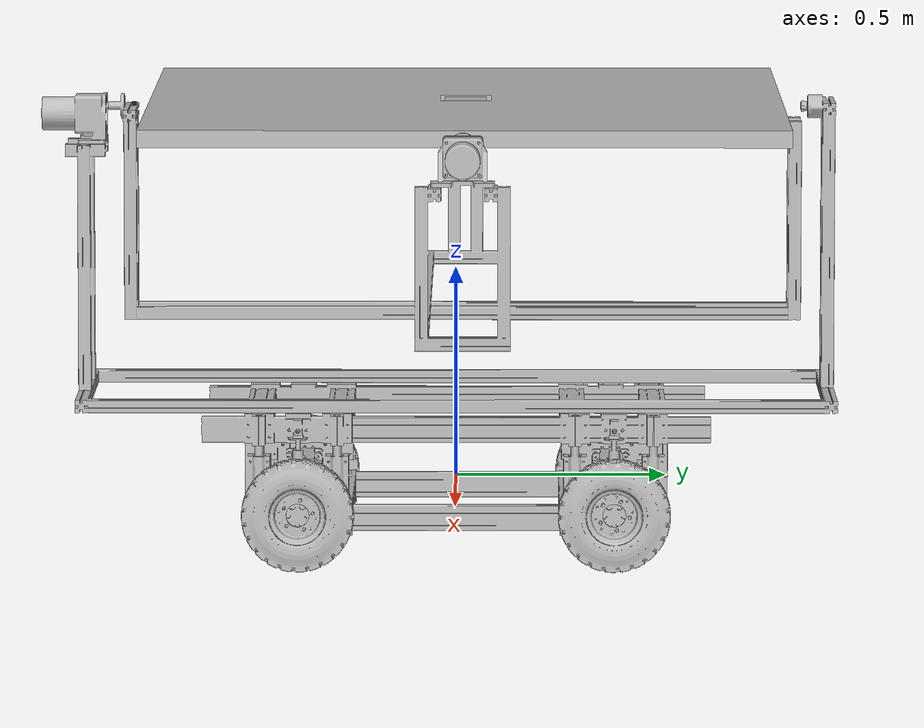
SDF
<sdf version='1.6'>
  <model name='Mobile_Leveling_Platform_V2'>
    <link name='base_link'>
      <pose frame=''>0 0 0 0 -0 0</pose>
      <inertial>
        <pose frame=''>4e-06 0.005832 0.153015 0 -0 0</pose>
        <mass>35.5236</mass>
        <inertia>
          <ixx>12.5602</ixx>
          <ixy>5.35833e-06</ixy>
          <ixz>-1.17498e-06</ixz>
          <iyy>5.74336</iyy>
          <iyz>-0.0289936</iyz>
          <izz>12.8391</izz>
        </inertia>
      </inertial>
      <collision name='base_link_collision'>
        <pose frame=''>0 0 0 0 -0 0</pose>
        <geometry>
          <box>
            <size>0.64 0.998 0.222</size>
          </box>
        </geometry>
      </collision>
      <collision name='base_link_fixed_joint_lump__imu_link_base_collision_1'>
        <pose frame=''>0 0 0.111 0 -0 0</pose>
        <geometry>
          <box>
            <size>0.01 0.01 0.01</size>
          </box>
        </geometry>
      </collision>
      <collision name='base_link_fixed_joint_lump__mating_link_collision_2'>
        <pose frame=''>1e-05 -0.02989 0.160848 0 -0 0</pose>
        <geometry>
          <box>
            <size>0.64 1.81 0.1</size>
          </box>
        </geometry>
      </collision>
      <collision name='base_link_fixed_joint_lump__front_leveling_link_collision_3'>
        <pose frame=''>-0.006 -0.91289 0.57249 0 -0 0</pose>
        <geometry>
          <box>
            <size>0.218 0.153 0.697</size>
          </box>
        </geometry>
      </collision>
      <collision name='base_link_fixed_joint_lump__rear_Leveling_link_collision_4'>
        <pose frame=''>0 0.882161 0.57749 0 -0 0</pose>
        <geometry>
          <box>
            <size>0.1535 0.08 0.697</size>
          </box>
        </geometry>
      </collision>
      <visual name='base_link_visual'>
        <pose frame=''>0 1.5 0 0 -0 0</pose>
        <geometry>
          <mesh>
            <scale>1 1 1</scale>
            <uri>model://Mobile_Leveling_Platform_V2/meshes/base_link.STL</uri>
          </mesh>
        </geometry>
      </visual>
      <visual name='base_link_fixed_joint_lump__imu_link_base_visual_1'>
        <pose frame=''>0 0 0.111 0 -0 0</pose>
        <geometry>
          <box>
            <size>0.01 0.01 0.01</size>
          </box>
        </geometry>
      </visual>
      <visual name='base_link_fixed_joint_lump__mating_link_visual_2'>
        <pose frame=''>-0.28 0.88511 0.20249 0 -0 0</pose>
        <geometry>
          <mesh>
            <scale>1 1 1</scale>
            <uri>model://Mobile_Leveling_Platform_V2/meshes/mating_link.STL</uri>
          </mesh>
        </geometry>
      </visual>
      <visual name='base_link_fixed_joint_lump__front_leveling_link_visual_3'>
        <pose frame=''>0.094 -0.88289 0.21749 0 -0 0</pose>
        <geometry>
          <mesh>
            <scale>1 1 1</scale>
            <uri>model://Mobile_Leveling_Platform_V2/meshes/front_leveling_link.STL</uri>
          </mesh>
        </geometry>
      </visual>
      <visual name='base_link_fixed_joint_lump__rear_Leveling_link_visual_4'>
        <pose frame=''>-0.03175 0.88511 0.21749 0 -0 0</pose>
        <geometry>
          <mesh>
            <scale>1 1 1</scale>
            <uri>model://Mobile_Leveling_Platform_V2/meshes/rear_Leveling_link.STL</uri>
          </mesh>
        </geometry>
      </visual>
    </link>
    <link name='front_L_motor_rev_link'>
      <pose frame=''>0.363 -0.3709 -0.041791 3.14159 -1.57079 3.14159</pose>
      <inertial>
        <pose frame=''>0 0 -0.010725 0 -0 0</pose>
        <mass>3.03082</mass>
        <inertia>
          <ixx>0.0156335</ixx>
          <ixy>-4.20874e-07</ixy>
          <ixz>-5.7378e-07</ixz>
          <iyy>0.0156294</iyy>
          <iyz>-1.7765e-07</iyz>
          <izz>0.0290559</izz>
        </inertia>
      </inertial>
      <collision name='front_L_motor_rev_link_collision'>
        <pose frame=''>0 0 0 0 -0 0</pose>
        <geometry>
          <mesh>
            <scale>1 1 1</scale>
            <uri>model://Mobile_Leveling_Platform_V2/meshes/front_L_motor_rev_link.STL</uri>
          </mesh>
        </geometry>
      </collision>
      <collision name='front_L_motor_rev_link_fixed_joint_lump__front_L_tire_link_collision_1'>
        <pose frame=''>0 0 -0.011 3.14159 1.57079 3.0095</pose>
        <geometry>
          <mesh>
            <scale>1 1 1</scale>
            <uri>model://Mobile_Leveling_Platform_V2/meshes/front_L_tire_link.STL</uri>
          </mesh>
        </geometry>
      </collision>
      <visual name='front_L_motor_rev_link_visual'>
        <pose frame=''>0 0 0 0 -0 0</pose>
        <geometry>
          <mesh>
            <scale>1 1 1</scale>
            <uri>model://Mobile_Leveling_Platform_V2/meshes/front_L_motor_rev_link.STL</uri>
          </mesh>
        </geometry>
      </visual>
      <visual name='front_L_motor_rev_link_fixed_joint_lump__front_L_tire_link_visual_1'>
        <pose frame=''>0 0 -0.011 3.14159 1.57079 3.0095</pose>
        <geometry>
          <mesh>
            <scale>1 1 1</scale>
            <uri>model://Mobile_Leveling_Platform_V2/meshes/front_L_tire_link.STL</uri>
          </mesh>
        </geometry>
      </visual>
    </link>
    <joint name='front_L_motor_rev_joint' type='revolute'>
      <child>front_L_motor_rev_link</child>
      <parent>base_link</parent>
      <axis>
        <xyz>1 0 4e-06</xyz>
        <limit>
          <lower>-1e+16</lower>
          <upper>1e+16</upper>
        </limit>
        <dynamics>
          <spring_reference>0</spring_reference>
          <spring_stiffness>0</spring_stiffness>
        </dynamics>
        <use_parent_model_frame>1</use_parent_model_frame>
      </axis>
    </joint>
    <link name='front_R_motor_link'>
      <pose frame=''>-0.363 -0.3709 -0.041791 7e-06 -1.57079 -3.14159</pose>
      <inertial>
        <pose frame=''>0 0 -0.010725 0 -0 0</pose>
        <mass>3.03082</mass>
        <inertia>
          <ixx>0.0156335</ixx>
          <ixy>-4.79199e-07</ixy>
          <ixz>-5.7378e-07</ixz>
          <iyy>0.0156294</iyy>
          <iyz>-1.7765e-07</iyz>
          <izz>0.0290559</izz>
        </inertia>
      </inertial>
      <collision name='front_R_motor_link_collision'>
        <pose frame=''>0 0 0 0 -0 0</pose>
        <geometry>
          <mesh>
            <scale>1 1 1</scale>
            <uri>model://Mobile_Leveling_Platform_V2/meshes/front_R_motor_link.STL</uri>
          </mesh>
        </geometry>
      </collision>
      <collision name='front_R_motor_link_fixed_joint_lump__front_R_tire_link_collision_1'>
        <pose frame=''>0 0 -0.011 3.14159 1.57079 2.99433</pose>
        <geometry>
          <mesh>
            <scale>1 1 1</scale>
            <uri>model://Mobile_Leveling_Platform_V2/meshes/front_R_tire_link.STL</uri>
          </mesh>
        </geometry>
      </collision>
      <visual name='front_R_motor_link_visual'>
        <pose frame=''>0 0 0 0 -0 0</pose>
        <geometry>
          <mesh>
            <scale>1 1 1</scale>
            <uri>model://Mobile_Leveling_Platform_V2/meshes/front_R_motor_link.STL</uri>
          </mesh>
        </geometry>
      </visual>
      <visual name='front_R_motor_link_fixed_joint_lump__front_R_tire_link_visual_1'>
        <pose frame=''>0 0 -0.011 3.14159 1.57079 2.99433</pose>
        <geometry>
          <mesh>
            <scale>1 1 1</scale>
            <uri>model://Mobile_Leveling_Platform_V2/meshes/front_R_tire_link.STL</uri>
          </mesh>
        </geometry>
      </visual>
    </link>
    <joint name='front_R_motor_rev_joint' type='revolute'>
      <child>front_R_motor_link</child>
      <parent>base_link</parent>
      <axis>
        <xyz>1 7e-06 4e-06</xyz>
        <limit>
          <lower>-1e+16</lower>
          <upper>1e+16</upper>
        </limit>
        <dynamics>
          <spring_reference>0</spring_reference>
          <spring_stiffness>0</spring_stiffness>
        </dynamics>
        <use_parent_model_frame>1</use_parent_model_frame>
      </axis>
    </joint>
    <link name='front_motor_rev_link'>
      <pose frame=''>0 -0.82789 0.88749 -3.14159 -0 3.14159</pose>
      <inertial>
        <pose frame=''>0.001383 0.842231 0.334186 0 -0 0</pose>
        <mass>8.64113</mass>
        <inertia>
          <ixx>1.23967</ixx>
          <ixy>-0.00013831</ixy>
          <ixz>-5.9428e-05</ixz>
          <iyy>1.16119</iyy>
          <iyz>-0.0201866</iyz>
          <izz>2.00925</izz>
        </inertia>
      </inertial>
      <collision name='front_motor_rev_link_collision'>
        <pose frame=''>0 0 0 0 -0 0</pose>
        <geometry>
          <mesh>
            <scale>1 1 1</scale>
            <uri>model://Mobile_Leveling_Platform_V2/meshes/front_motor_rev_link.STL</uri>
          </mesh>
        </geometry>
      </collision>
      <collision name='front_motor_rev_link_fixed_joint_lump__GPS_link_collision_1'>
        <pose frame=''>0 0.061814 -0.0055 0 -1e-06 0</pose>
        <geometry>
          <box>
            <size>0.01 0.01 0.01</size>
          </box>
        </geometry>
        <surface>
          <contact>
            <ode/>
          </contact>
          <friction>
            <ode/>
          </friction>
        </surface>
      </collision>
      <collision name='front_motor_rev_link_fixed_joint_lump__under_upper_link_collision_2'>
        <pose frame=''>0.001403 0.853808 0.339169 3.14159 -0 3.14159</pose>
        <geometry>
          <box>
            <size>1.16635 1.16635 0.505</size>
          </box>
        </geometry>
      </collision>
      <visual name='front_motor_rev_link_visual'>
        <pose frame=''>0 0 0 0 -0 0</pose>
        <geometry>
          <mesh>
            <scale>1 1 1</scale>
            <uri>model://Mobile_Leveling_Platform_V2/meshes/front_motor_rev_link.STL</uri>
          </mesh>
        </geometry>
      </visual>
      <visual name='front_motor_rev_link_fixed_joint_lump__GPS_link_visual_1'>
        <pose frame=''>0 0.061814 -0.0055 0 -1e-06 0</pose>
        <geometry>
          <box>
            <size>0.01 0.01 0.01</size>
          </box>
        </geometry>
        <material>
          <script>
            <name>Gazebo/Black</name>
            <uri>file://media/materials/scripts/gazebo.material</uri>
          </script>
        </material>
      </visual>
      <visual name='front_motor_rev_link_fixed_joint_lump__under_upper_link_visual_2'>
        <pose frame=''>0.087597 0.053 0.015743 3.14159 -0 3.14159</pose>
        <geometry>
          <mesh>
            <scale>1 1 1</scale>
            <uri>model://Mobile_Leveling_Platform_V2/meshes/under_upper_link.STL</uri>
          </mesh>
        </geometry>
      </visual>
      <gravity>1</gravity>
      <velocity_decay/>
    </link>
    <joint name='front_motor_rev_joint' type='revolute'>
      <child>front_motor_rev_link</child>
      <parent>base_link</parent>
      <axis>
        <xyz>7e-06 1 -7e-06</xyz>
        <limit>
          <lower>-0.5236</lower>
          <upper>0.5236</upper>
          <effort>1</effort>
          <velocity>1</velocity>
        </limit>
        <dynamics>
          <spring_reference>0</spring_reference>
          <spring_stiffness>0</spring_stiffness>
        </dynamics>
        <use_parent_model_frame>1</use_parent_model_frame>
      </axis>
    </joint>
    <link name='upper_motor_rev_link'>
      <pose frame=''>0.789403 0.018861 0.871735 0 -0.005831 1.5708</pose>
      <inertial>
        <pose frame=''>0.0035 0.787546 0.012922 0 -0 0</pose>
        <mass>22.2003</mass>
        <inertia>
          <ixx>2.29032</ixx>
          <ixy>-6.7141e-05</ixy>
          <ixz>0.0132227</ixz>
          <iyy>2.27573</iyy>
          <iyz>-0.00024664</iyz>
          <izz>4.55257</izz>
        </inertia>
      </inertial>
      <collision name='upper_motor_rev_link_collision'>
        <pose frame=''>0 0 0 0 -0 0</pose>
        <geometry>
          <mesh>
            <scale>1 1 1</scale>
            <uri>model://Mobile_Leveling_Platform_V2/meshes/upper_motor_rev_link.STL</uri>
          </mesh>
        </geometry>
      </collision>
      <collision name='upper_motor_rev_link_fixed_joint_lump__upper_link_collision_1'>
        <pose frame=''>0.003478 0.788408 0.008206 -0.005846 -0 -1.5708</pose>
        <geometry>
          <box>
            <size>1.5 1.5 0.03</size>
          </box>
        </geometry>
      </collision>
      <collision name='upper_motor_rev_link_fixed_joint_lump__beacon_collision_collision_2'>
        <pose frame=''>0.003251 0.788 0.023982 -0.005846 -0 -1.5708</pose>
        <geometry>
          <box>
            <size>0.1 0.1 0.01</size>
          </box>
        </geometry>
      </collision>
      <collision name='upper_motor_rev_link_fixed_joint_lump__imu_link_upper_collision_3'>
        <pose frame=''>0.002993 0.788817 -0.020018 -0.005846 -0 -1.5708</pose>
        <geometry>
          <box>
            <size>0.01 0.01 0.01</size>
          </box>
        </geometry>
      </collision>
      <visual name='upper_motor_rev_link_visual'>
        <pose frame=''>0 0 0 0 -0 0</pose>
        <geometry>
          <mesh>
            <scale>1 1 1</scale>
            <uri>model://Mobile_Leveling_Platform_V2/meshes/upper_motor_rev_link.STL</uri>
          </mesh>
        </geometry>
      </visual>
      <visual name='upper_motor_rev_link_fixed_joint_lump__upper_link_visual_1'>
        <pose frame=''>0.003838 0.788 0.014978 -0.005846 -0 -1.5708</pose>
        <geometry>
          <mesh>
            <scale>1 1 1</scale>
            <uri>model://Mobile_Leveling_Platform_V2/meshes/upper.STL</uri>
          </mesh>
        </geometry>
      </visual>
      <visual name='upper_motor_rev_link_fixed_joint_lump__beacon_visual_visual_2'>
        <pose frame=''>0.003251 0.788 0.023982 -0.005846 -0 -1.5708</pose>
        <geometry>
          <box>
            <size>0.1 0.1 0.02</size>
          </box>
        </geometry>
      </visual>
      <visual name='upper_motor_rev_link_fixed_joint_lump__imu_link_upper_visual_3'>
        <pose frame=''>0.002993 0.788817 -0.020018 -0.005846 -0 -1.5708</pose>
        <geometry>
          <box>
            <size>0.01 0.01 0.01</size>
          </box>
        </geometry>
      </visual>
      <gravity>1</gravity>
      <velocity_decay/>
    </link>
    <joint name='upper_motor_rev_joint' type='revolute'>
      <child>upper_motor_rev_link</child>
      <parent>front_motor_rev_link</parent>
      <axis>
        <xyz>1 4e-06 -0</xyz>
        <limit>
          <lower>-0.5236</lower>
          <upper>0.5236</upper>
          <effort>1</effort>
          <velocity>1</velocity>
        </limit>
        <dynamics>
          <spring_reference>0</spring_reference>
          <spring_stiffness>0</spring_stiffness>
        </dynamics>
        <use_parent_model_frame>1</use_parent_model_frame>
      </axis>
    </joint>
    <link name='rear_L_motor_rev_link'>
      <pose frame=''>0.363 0.3731 -0.041791 3.14159 -1.57079 3.14159</pose>
      <inertial>
        <pose frame=''>0 0 -0.010725 0 -0 0</pose>
        <mass>3.03082</mass>
        <inertia>
          <ixx>0.0156335</ixx>
          <ixy>6.36247e-07</ixy>
          <ixz>-5.7378e-07</ixz>
          <iyy>0.0156294</iyy>
          <iyz>-1.7765e-07</iyz>
          <izz>0.0290559</izz>
        </inertia>
      </inertial>
      <collision name='rear_L_motor_rev_link_collision'>
        <pose frame=''>0 0 0 0 -0 0</pose>
        <geometry>
          <mesh>
            <scale>1 1 1</scale>
            <uri>model://Mobile_Leveling_Platform_V2/meshes/rear_L_motor_rev_link.STL</uri>
          </mesh>
        </geometry>
      </collision>
      <collision name='rear_L_motor_rev_link_fixed_joint_lump__rear_L_tire_link_collision_1'>
        <pose frame=''>0 0 -0.011 3.14159 -1.57079 -3.00622</pose>
        <geometry>
          <mesh>
            <scale>1 1 1</scale>
            <uri>model://Mobile_Leveling_Platform_V2/meshes/rear_L_tire_link.STL</uri>
          </mesh>
        </geometry>
      </collision>
      <visual name='rear_L_motor_rev_link_visual'>
        <pose frame=''>0 0 0 0 -0 0</pose>
        <geometry>
          <mesh>
            <scale>1 1 1</scale>
            <uri>model://Mobile_Leveling_Platform_V2/meshes/rear_L_motor_rev_link.STL</uri>
          </mesh>
        </geometry>
      </visual>
      <visual name='rear_L_motor_rev_link_fixed_joint_lump__rear_L_tire_link_visual_1'>
        <pose frame=''>0 0 -0.011 3.14159 -1.57079 -3.00622</pose>
        <geometry>
          <mesh>
            <scale>1 1 1</scale>
            <uri>model://Mobile_Leveling_Platform_V2/meshes/rear_L_tire_link.STL</uri>
          </mesh>
        </geometry>
      </visual>
    </link>
    <joint name='rear_L_motor_rev_joint' type='revolute'>
      <child>rear_L_motor_rev_link</child>
      <parent>base_link</parent>
      <axis>
        <xyz>1 0 4e-06</xyz>
        <limit>
          <lower>-1e+16</lower>
          <upper>1e+16</upper>
        </limit>
        <dynamics>
          <spring_reference>0</spring_reference>
          <spring_stiffness>0</spring_stiffness>
        </dynamics>
        <use_parent_model_frame>1</use_parent_model_frame>
      </axis>
    </joint>
    <link name='rear_R_motor_rev_link'>
      <pose frame=''>-0.363 0.3731 -0.041791 7e-06 -1.57079 -3.14159</pose>
      <inertial>
        <pose frame=''>0 0 -0.010725 0 -0 0</pose>
        <mass>3.03082</mass>
        <inertia>
          <ixx>0.0156335</ixx>
          <ixy>-4.49427e-07</ixy>
          <ixz>-5.7378e-07</ixz>
          <iyy>0.0156294</iyy>
          <iyz>-1.7765e-07</iyz>
          <izz>0.0290559</izz>
        </inertia>
      </inertial>
      <collision name='rear_R_motor_rev_link_collision'>
        <pose frame=''>0 0 0 0 -0 0</pose>
        <geometry>
          <mesh>
            <scale>1 1 1</scale>
            <uri>model://Mobile_Leveling_Platform_V2/meshes/rear_R_motor_rev_link.STL</uri>
          </mesh>
        </geometry>
      </collision>
      <collision name='rear_R_motor_rev_link_fixed_joint_lump__rear_R_tire_link_collision_1'>
        <pose frame=''>0 0 -0.011 3.14159 1.57079 3.00209</pose>
        <geometry>
          <mesh>
            <scale>1 1 1</scale>
            <uri>model://Mobile_Leveling_Platform_V2/meshes/rear_R_tire_link.STL</uri>
          </mesh>
        </geometry>
      </collision>
      <visual name='rear_R_motor_rev_link_visual'>
        <pose frame=''>0 0 0 0 -0 0</pose>
        <geometry>
          <mesh>
            <scale>1 1 1</scale>
            <uri>model://Mobile_Leveling_Platform_V2/meshes/rear_R_motor_rev_link.STL</uri>
          </mesh>
        </geometry>
      </visual>
      <visual name='rear_R_motor_rev_link_fixed_joint_lump__rear_R_tire_link_visual_1'>
        <pose frame=''>0 0 -0.011 3.14159 1.57079 3.00209</pose>
        <geometry>
          <mesh>
            <scale>1 1 1</scale>
            <uri>model://Mobile_Leveling_Platform_V2/meshes/rear_R_tire_link.STL</uri>
          </mesh>
        </geometry>
      </visual>
    </link>
    <joint name='rear_R_motor_rev_joint' type='revolute'>
      <child>rear_R_motor_rev_link</child>
      <parent>base_link</parent>
      <axis>
        <xyz>1 7e-06 4e-06</xyz>
        <limit>
          <lower>-1e+16</lower>
          <upper>1e+16</upper>
        </limit>
        <dynamics>
          <spring_reference>0</spring_reference>
          <spring_stiffness>0</spring_stiffness>
        </dynamics>
        <use_parent_model_frame>1</use_parent_model_frame>
      </axis>
    </joint>
  </model>
</sdf>
